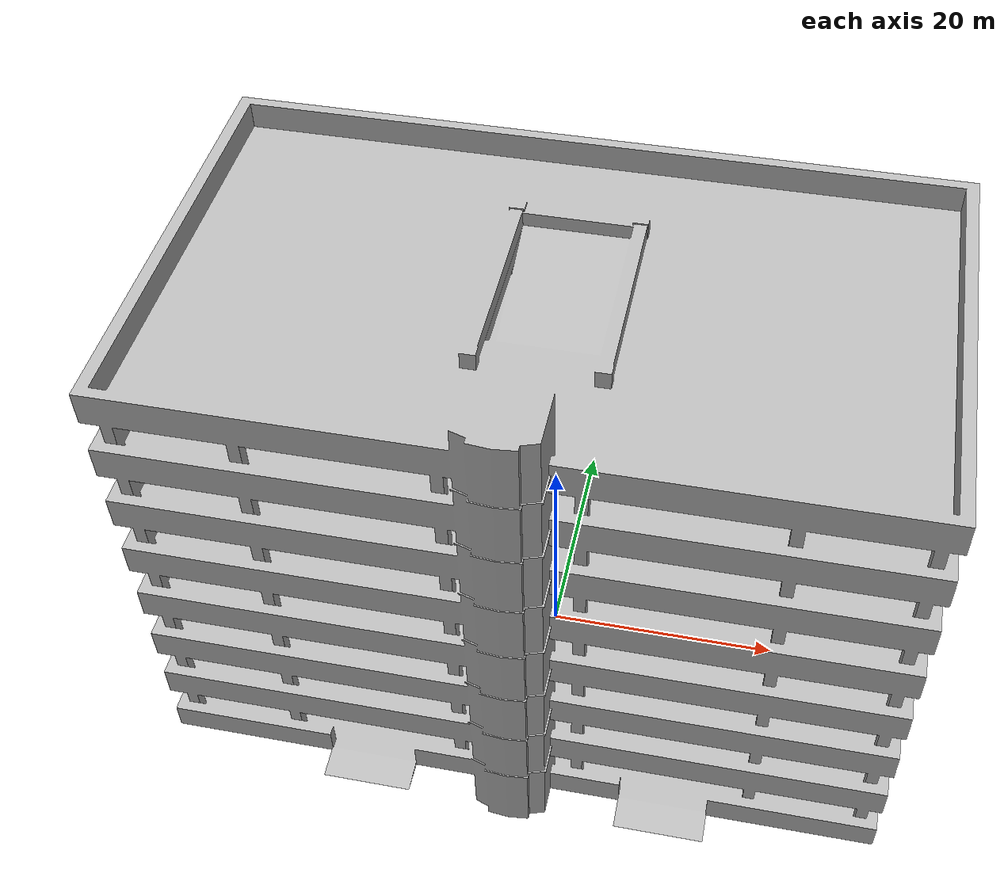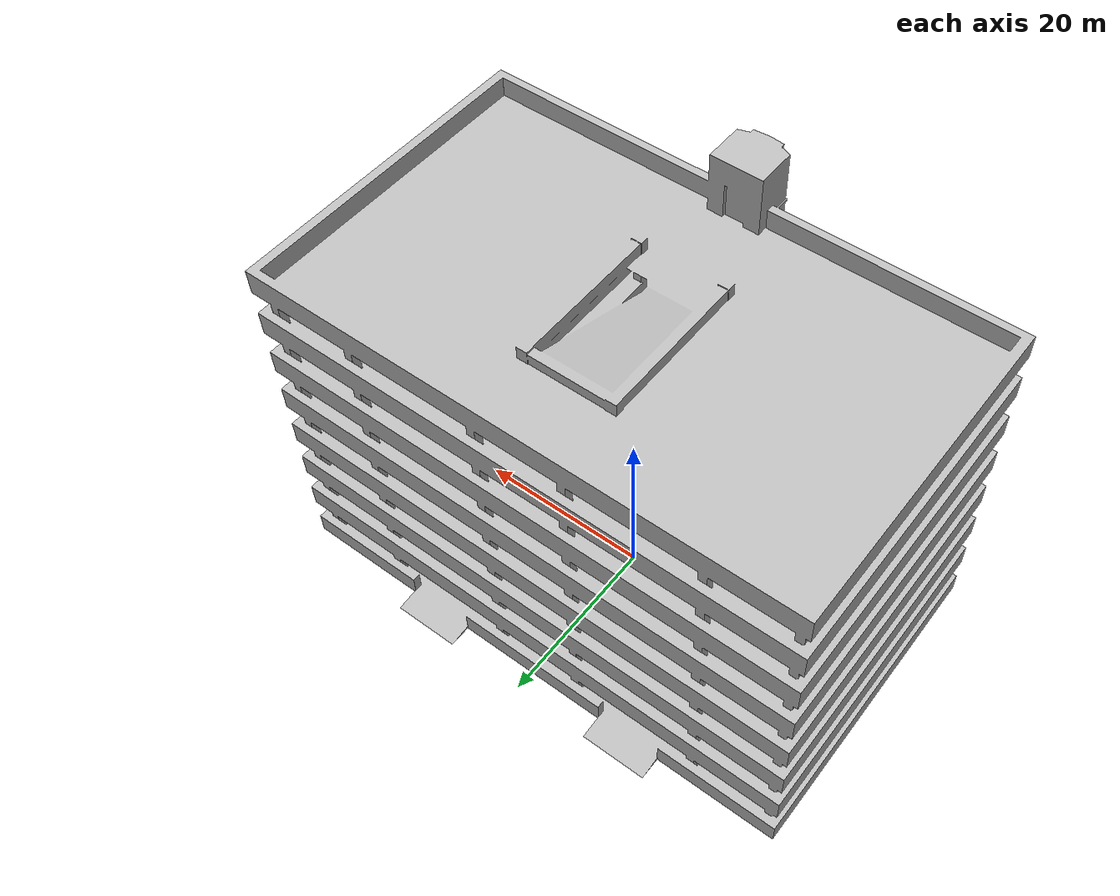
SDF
<?xml version="1.0" ?>
<sdf version="1.6">
  <model name="parking_garage">
    <static>true</static>
    <link name="link">
      <collision name="collision">
        <geometry>
          <mesh>
            <uri>model://parking_garage/meshes/parking_garage.dae</uri>
          </mesh>
        </geometry>
      </collision>
      <visual name="visual">
        <geometry>
          <mesh>
            <uri>model://parking_garage/meshes/parking_garage.dae</uri>
          </mesh>
        </geometry>
      </visual>
    </link>
  </model>
</sdf>
